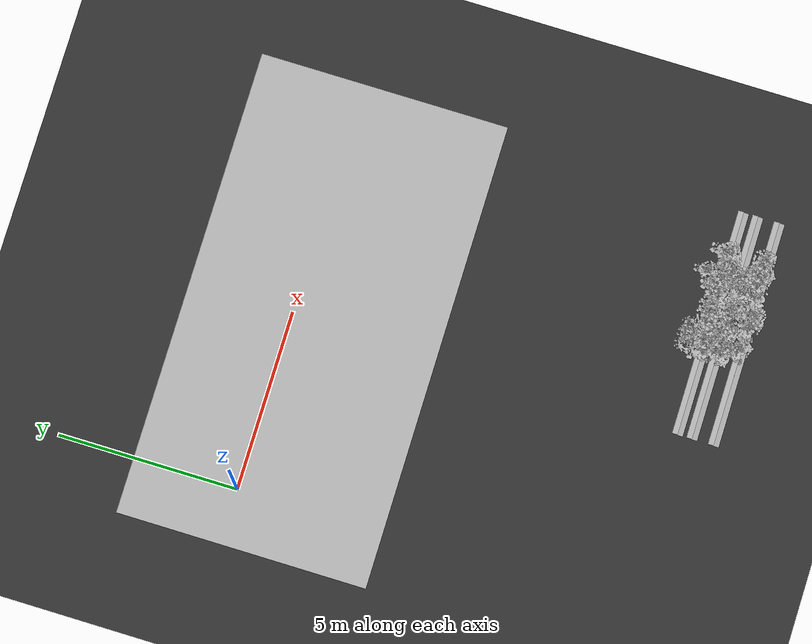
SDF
<sdf version="1.7">
 <world name="default">
  <model name="ground_plane">
   <static>1</static>
   <link name="link">
    <collision name="collision">
     <geometry><plane><normal>0 0 1</normal><size>100 100</size></plane></geometry>
     <surface>
      <contact><collide_bitmask>65535</collide_bitmask></contact>
      <friction><ode><mu>100</mu><mu2>50</mu2></ode></friction>
     </surface>
    </collision>
    <visual name="visual">
     <cast_shadows>0</cast_shadows>
     <geometry><plane><normal>0 0 1</normal><size>100 100</size></plane></geometry>
     <material>
      <ambient>0.2 0.2 0.2 1.0</ambient>
      <diffuse>0.2 0.2 0.2 1.0</diffuse>
      <specular>0.2 0.2 0.2 1.0</specular>
      <emissive>0.2 0.2 0.2 1.0</emissive>
     </material>
    </visual>
   </link>
  </model>
  <model name="ground">
   <pose>5 -0.5 0.01  3.141592654 0 0</pose>
   <static>true</static>
   <link name="body">
    <visual name="visual">
     <cast_shadows>0</cast_shadows>
     <geometry>
      <mesh><uri>file:///home/ifcosta/catkin_ws/src/cnn_line/worlds/models/ground.obj</uri></mesh>
     </geometry>
    </visual>
   </link>
  </model>
  <model name="plt_30024">
   <pose>7.23 -10.3 0.0149 0.0 0.0 -0.47125</pose>
   <static>true</static>
   <link name="body">
    <visual name="visual">
     <geometry>
      <mesh><uri>file:///home/ifcosta/catkin_ws/src/cnn_line/worlds/models/plant32.obj</uri></mesh>
     </geometry>
    </visual>
   </link>
  </model>
  <model name="plt_30025">
   <pose>7.53 -10.3 0.0139 0.0 0.0 0.48638</pose>
   <static>true</static>
   <link name="body">
    <visual name="visual">
     <geometry>
      <mesh><uri>file:///home/ifcosta/catkin_ws/src/cnn_line/worlds/models/plant32.obj</uri></mesh>
     </geometry>
    </visual>
   </link>
  </model>
  <model name="plt_30026">
   <pose>7.75 -10.3 0.0156 0.0 0.0 0.89566</pose>
   <static>true</static>
   <link name="body">
    <visual name="visual">
     <geometry>
      <mesh><uri>file:///home/ifcosta/catkin_ws/src/cnn_line/worlds/models/plant35.obj</uri></mesh>
     </geometry>
    </visual>
   </link>
  </model>
  <model name="plt_30031">
   <pose>9.29 -10.3 0.0153 0.0 0.0 -0.72704</pose>
   <static>true</static>
   <link name="body">
    <visual name="visual">
     <geometry>
      <mesh><uri>file:///home/ifcosta/catkin_ws/src/cnn_line/worlds/models/plant36.obj</uri></mesh>
     </geometry>
    </visual>
   </link>
  </model>
  <model name="plt_40127">
   <pose>7.46 -11.7 0.0118 0.0 0.0 -0.26981</pose>
   <static>true</static>
   <link name="body">
    <visual name="visual">
     <geometry>
      <mesh><uri>file:///home/ifcosta/catkin_ws/src/cnn_line/worlds/models/plant37.obj</uri></mesh>
     </geometry>
    </visual>
   </link>
  </model>
  <model name="plt_40129">
   <pose>8.1 -11.8 0.0155 0.0 0.0 -0.1543</pose>
   <static>true</static>
   <link name="body">
    <visual name="visual">
     <geometry>
      <mesh><uri>file:///home/ifcosta/catkin_ws/src/cnn_line/worlds/models/plant37.obj</uri></mesh>
     </geometry>
    </visual>
   </link>
  </model>
  <model name="plt_40130">
   <pose>8.44 -11.8 0.0182 0.0 0.0 -1.5015</pose>
   <static>true</static>
   <link name="body">
    <visual name="visual">
     <geometry>
      <mesh><uri>file:///home/ifcosta/catkin_ws/src/cnn_line/worlds/models/plant37.obj</uri></mesh>
     </geometry>
    </visual>
   </link>
  </model>
  <model name="plt_40132">
   <pose>8.96 -11.7 0.0173 0.0 0.0 1.4504</pose>
   <static>true</static>
   <link name="body">
    <visual name="visual">
     <geometry>
      <mesh><uri>file:///home/ifcosta/catkin_ws/src/cnn_line/worlds/models/plant37.obj</uri></mesh>
     </geometry>
    </visual>
   </link>
  </model>
  <model name="plt_40133">
   <pose>9.35 -11.7 0.0179 0.0 0.0 -0.13395</pose>
   <static>true</static>
   <link name="body">
    <visual name="visual">
     <geometry>
      <mesh><uri>file:///home/ifcosta/catkin_ws/src/cnn_line/worlds/models/plant37.obj</uri></mesh>
     </geometry>
    </visual>
   </link>
  </model>
  <model name="plt_40134">
   <pose>9.6 -11.7 0.0144 0.0 0.0 -0.64742</pose>
   <static>true</static>
   <link name="body">
    <visual name="visual">
     <geometry>
      <mesh><uri>file:///home/ifcosta/catkin_ws/src/cnn_line/worlds/models/plant37.obj</uri></mesh>
     </geometry>
    </visual>
   </link>
  </model>
  <model name="plt_40135">
   <pose>9.91 -11.7 0.0159 0.0 0.0 0.15173</pose>
   <static>true</static>
   <link name="body">
    <visual name="visual">
     <geometry>
      <mesh><uri>file:///home/ifcosta/catkin_ws/src/cnn_line/worlds/models/plant37.obj</uri></mesh>
     </geometry>
    </visual>
   </link>
  </model>
  <model name="slope_1736">
   <pose>8.0 -11.8 -0.005 0.0 0.0 0.0</pose>
   <static>true</static>
   <link name="body">
    <visual name="visual">
     <geometry>
      <mesh><uri>file:///home/ifcosta/catkin_ws/src/cnn_line/worlds/models/slope.obj</uri></mesh>
     </geometry>
    </visual>
   </link>
  </model>
  <model name="slope_1836">
   <pose>8.0 -11.8 -0.005 0.0 0.0 3.1416</pose>
   <static>true</static>
   <link name="body">
    <visual name="visual">
     <geometry>
      <mesh><uri>file:///home/ifcosta/catkin_ws/src/cnn_line/worlds/models/slope.obj</uri></mesh>
     </geometry>
    </visual>
   </link>
  </model>
  <model name="plt_40160">
   <pose>7.22 -11.2 0.012 0.0 0.0 -1.4814</pose>
   <static>true</static>
   <link name="body">
    <visual name="visual">
     <geometry>
      <mesh><uri>file:///home/ifcosta/catkin_ws/src/cnn_line/worlds/models/plant37.obj</uri></mesh>
     </geometry>
    </visual>
   </link>
  </model>
  <model name="plt_40161">
   <pose>7.48 -11.3 0.013 0.0 0.0 -1.6442</pose>
   <static>true</static>
   <link name="body">
    <visual name="visual">
     <geometry>
      <mesh><uri>file:///home/ifcosta/catkin_ws/src/cnn_line/worlds/models/plant37.obj</uri></mesh>
     </geometry>
    </visual>
   </link>
  </model>
  <model name="plt_40162">
   <pose>7.79 -11.2 0.0152 0.0 0.0 -1.447</pose>
   <static>true</static>
   <link name="body">
    <visual name="visual">
     <geometry>
      <mesh><uri>file:///home/ifcosta/catkin_ws/src/cnn_line/worlds/models/plant37.obj</uri></mesh>
     </geometry>
    </visual>
   </link>
  </model>
  <model name="plt_40163">
   <pose>8.12 -11.3 0.0146 0.0 0.0 0.25194</pose>
   <static>true</static>
   <link name="body">
    <visual name="visual">
     <geometry>
      <mesh><uri>file:///home/ifcosta/catkin_ws/src/cnn_line/worlds/models/plant37.obj</uri></mesh>
     </geometry>
    </visual>
   </link>
  </model>
  <model name="plt_40164">
   <pose>8.41 -11.2 0.0141 0.0 0.0 -0.26845</pose>
   <static>true</static>
   <link name="body">
    <visual name="visual">
     <geometry>
      <mesh><uri>file:///home/ifcosta/catkin_ws/src/cnn_line/worlds/models/plant37.obj</uri></mesh>
     </geometry>
    </visual>
   </link>
  </model>
  <model name="plt_40166">
   <pose>9.0 -11.3 0.0137 0.0 0.0 0.99569</pose>
   <static>true</static>
   <link name="body">
    <visual name="visual">
     <geometry>
      <mesh><uri>file:///home/ifcosta/catkin_ws/src/cnn_line/worlds/models/plant37.obj</uri></mesh>
     </geometry>
    </visual>
   </link>
  </model>
  <model name="plt_40167">
   <pose>9.36 -11.2 0.0137 0.0 0.0 1.8196</pose>
   <static>true</static>
   <link name="body">
    <visual name="visual">
     <geometry>
      <mesh><uri>file:///home/ifcosta/catkin_ws/src/cnn_line/worlds/models/plant37.obj</uri></mesh>
     </geometry>
    </visual>
   </link>
  </model>
  <model name="slope_1770">
   <pose>8.0 -11.2 -0.005 0.0 0.0 0.0</pose>
   <static>true</static>
   <link name="body">
    <visual name="visual">
     <geometry>
      <mesh><uri>file:///home/ifcosta/catkin_ws/src/cnn_line/worlds/models/slope.obj</uri></mesh>
     </geometry>
    </visual>
   </link>
  </model>
  <model name="slope_1870">
   <pose>8.0 -11.2 -0.005 0.0 0.0 3.1416</pose>
   <static>true</static>
   <link name="body">
    <visual name="visual">
     <geometry>
      <mesh><uri>file:///home/ifcosta/catkin_ws/src/cnn_line/worlds/models/slope.obj</uri></mesh>
     </geometry>
    </visual>
   </link>
  </model>
  <model name="plt_40194">
   <pose>7.22 -10.8 0.0151 0.0 0.0 -0.13766</pose>
   <static>true</static>
   <link name="body">
    <visual name="visual">
     <geometry>
      <mesh><uri>file:///home/ifcosta/catkin_ws/src/cnn_line/worlds/models/plant37.obj</uri></mesh>
     </geometry>
    </visual>
   </link>
  </model>
  <model name="plt_40195">
   <pose>7.47 -10.8 0.0141 0.0 0.0 -0.51676</pose>
   <static>true</static>
   <link name="body">
    <visual name="visual">
     <geometry>
      <mesh><uri>file:///home/ifcosta/catkin_ws/src/cnn_line/worlds/models/plant37.obj</uri></mesh>
     </geometry>
    </visual>
   </link>
  </model>
  <model name="plt_40196">
   <pose>7.83 -10.8 0.0165 0.0 0.0 -2.079</pose>
   <static>true</static>
   <link name="body">
    <visual name="visual">
     <geometry>
      <mesh><uri>file:///home/ifcosta/catkin_ws/src/cnn_line/worlds/models/plant37.obj</uri></mesh>
     </geometry>
    </visual>
   </link>
  </model>
  <model name="plt_40197">
   <pose>8.07 -10.7 0.0148 0.0 0.0 0.63574</pose>
   <static>true</static>
   <link name="body">
    <visual name="visual">
     <geometry>
      <mesh><uri>file:///home/ifcosta/catkin_ws/src/cnn_line/worlds/models/plant37.obj</uri></mesh>
     </geometry>
    </visual>
   </link>
  </model>
  <model name="plt_40198">
   <pose>8.35 -10.7 0.0157 0.0 0.0 0.74302</pose>
   <static>true</static>
   <link name="body">
    <visual name="visual">
     <geometry>
      <mesh><uri>file:///home/ifcosta/catkin_ws/src/cnn_line/worlds/models/plant37.obj</uri></mesh>
     </geometry>
    </visual>
   </link>
  </model>
  <model name="plt_40199">
   <pose>8.73 -10.7 0.0171 0.0 0.0 -1.5035</pose>
   <static>true</static>
   <link name="body">
    <visual name="visual">
     <geometry>
      <mesh><uri>file:///home/ifcosta/catkin_ws/src/cnn_line/worlds/models/plant37.obj</uri></mesh>
     </geometry>
    </visual>
   </link>
  </model>
  <model name="plt_40200">
   <pose>9.03 -10.7 0.0139 0.0 0.0 -0.47615</pose>
   <static>true</static>
   <link name="body">
    <visual name="visual">
     <geometry>
      <mesh><uri>file:///home/ifcosta/catkin_ws/src/cnn_line/worlds/models/plant37.obj</uri></mesh>
     </geometry>
    </visual>
   </link>
  </model>
  <model name="plt_40201">
   <pose>9.29 -10.7 0.0139 0.0 0.0 -2.7855</pose>
   <static>true</static>
   <link name="body">
    <visual name="visual">
     <geometry>
      <mesh><uri>file:///home/ifcosta/catkin_ws/src/cnn_line/worlds/models/plant37.obj</uri></mesh>
     </geometry>
    </visual>
   </link>
  </model>
  <model name="plt_40202">
   <pose>9.54 -10.8 0.0184 0.0 0.0 -2.0474</pose>
   <static>true</static>
   <link name="body">
    <visual name="visual">
     <geometry>
      <mesh><uri>file:///home/ifcosta/catkin_ws/src/cnn_line/worlds/models/plant37.obj</uri></mesh>
     </geometry>
    </visual>
   </link>
  </model>
  <model name="plt_40203">
   <pose>9.89 -10.7 0.014 0.0 0.0 -0.89735</pose>
   <static>true</static>
   <link name="body">
    <visual name="visual">
     <geometry>
      <mesh><uri>file:///home/ifcosta/catkin_ws/src/cnn_line/worlds/models/plant37.obj</uri></mesh>
     </geometry>
    </visual>
   </link>
  </model>
  <model name="slope_1804">
   <pose>8.0 -10.8 -0.005 0.0 0.0 0.0</pose>
   <static>true</static>
   <link name="body">
    <visual name="visual">
     <geometry>
      <mesh><uri>file:///home/ifcosta/catkin_ws/src/cnn_line/worlds/models/slope.obj</uri></mesh>
     </geometry>
    </visual>
   </link>
  </model>
  <model name="slope_1904">
   <pose>8.0 -10.8 -0.005 0.0 0.0 3.1416</pose>
   <static>true</static>
   <link name="body">
    <visual name="visual">
     <geometry>
      <mesh><uri>file:///home/ifcosta/catkin_ws/src/cnn_line/worlds/models/slope.obj</uri></mesh>
     </geometry>
    </visual>
   </link>
  </model>
 </world>
</sdf>
